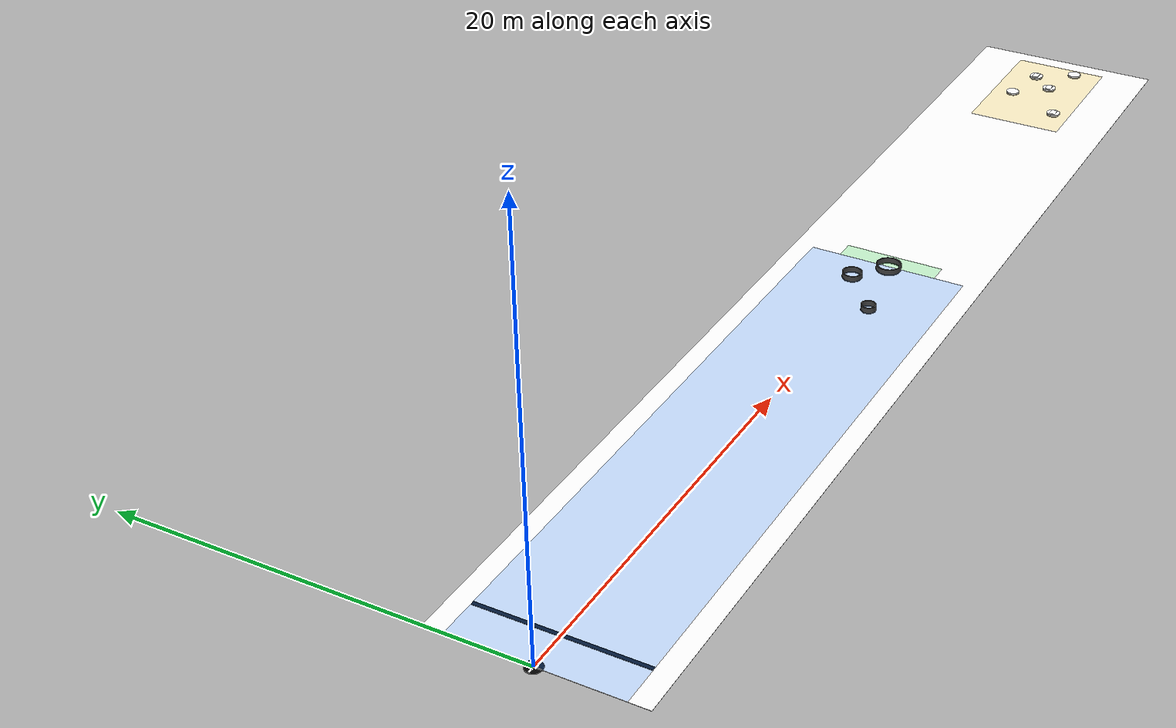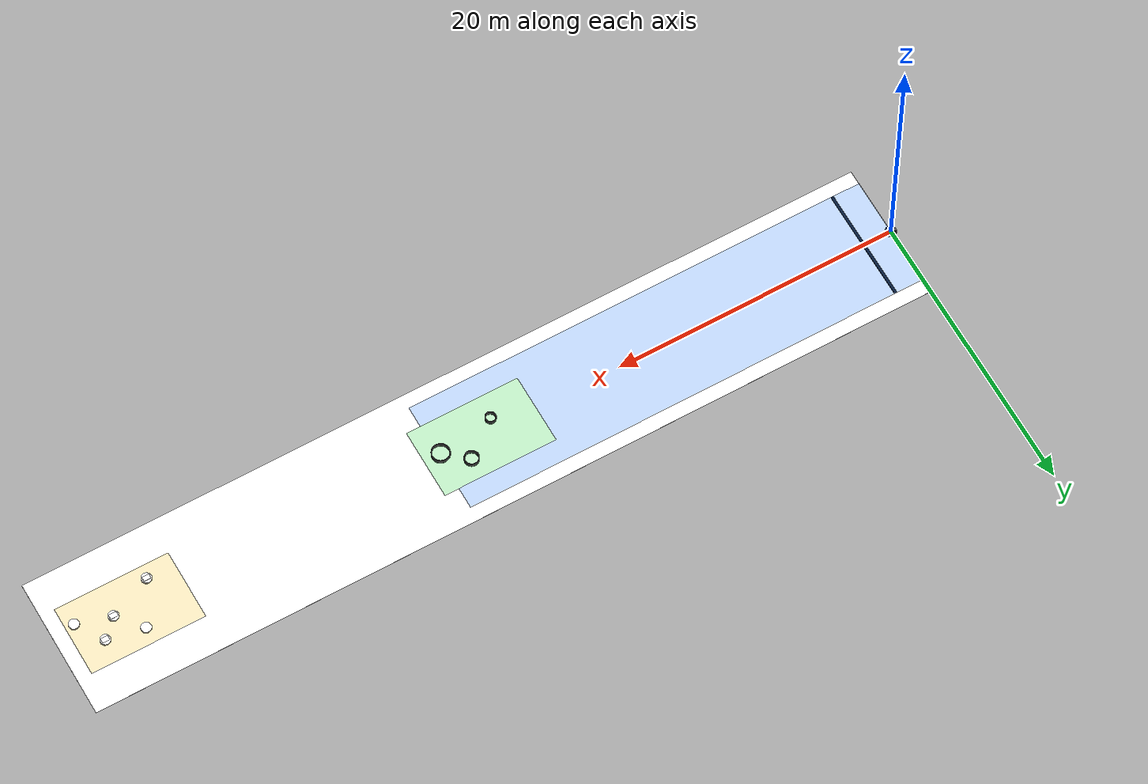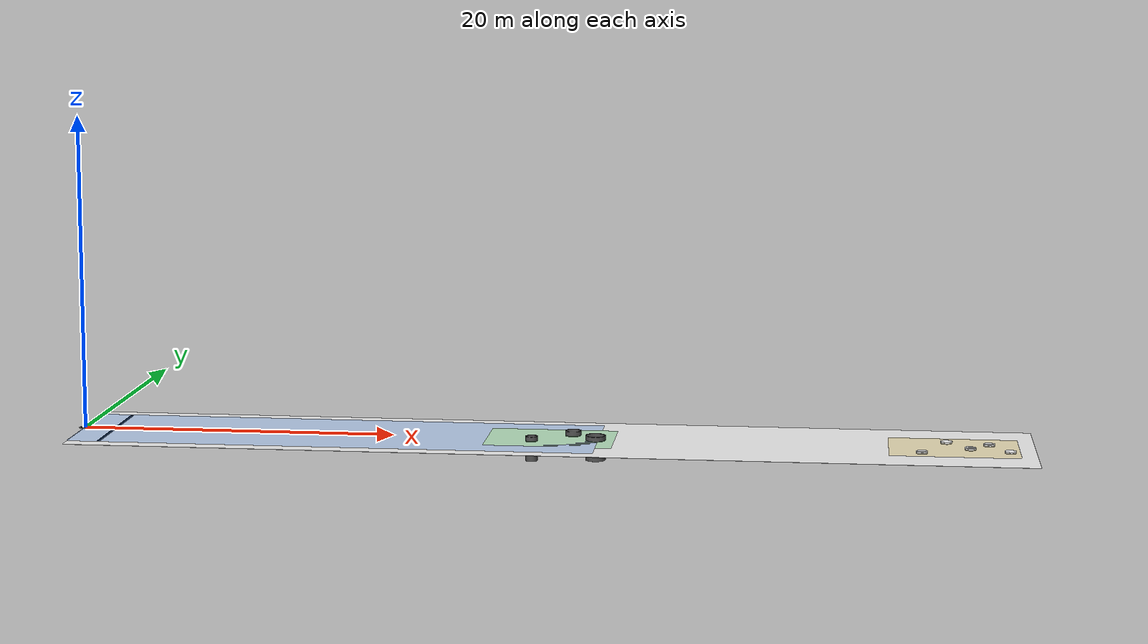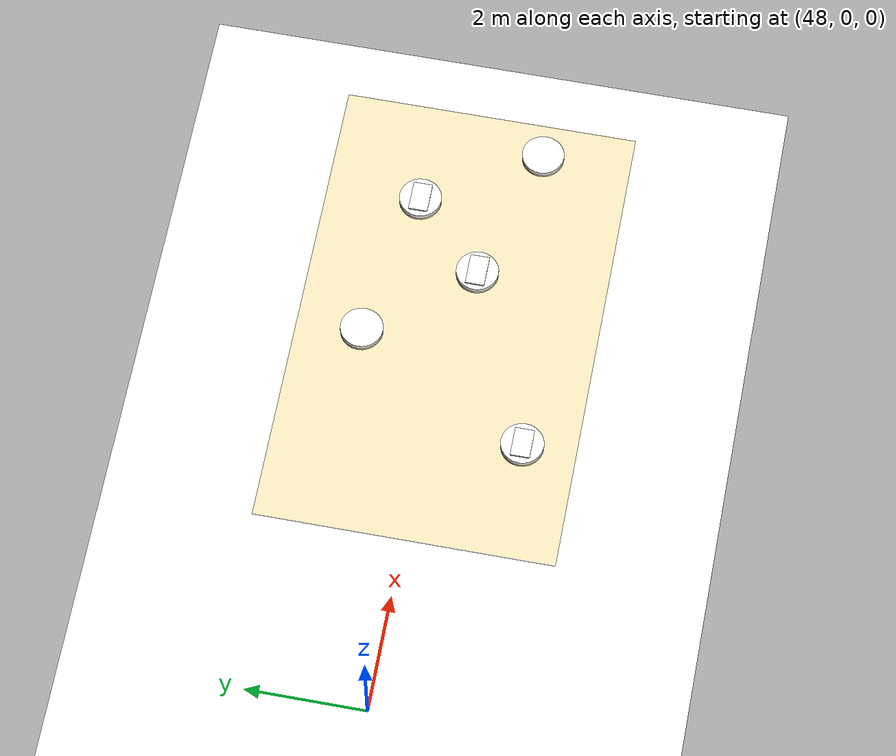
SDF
<?xml version="1.0" encoding="utf-8"?>
<sdf version="1.9">
  <model name="competition_map">
    <static>true</static>
    <model name="ground_plane">
      <static>true</static>
      <pose>0 0 0 0 0 0</pose>
      <link name="link">
        <!-- Collision: keep plane (fast and stable) -->
        <collision name="collision">
          <geometry>
            <plane>
              <normal>0 0 1</normal>
              <size>10 120</size>
            </plane>
          </geometry>
        </collision>
        <visual name="visual">
          <!-- Lift slightly to avoid z-fighting with the collision plane -->
          <pose>30 0 0.005 0 0 0</pose>
          <geometry>
            <box>
              <size>60 10 0.01</size>
            </box>
          </geometry>
          <material>
            <ambient>1 1 1 1</ambient>
            <diffuse>1 1 1 1</diffuse>
            <specular>0 0 0 1</specular>
            <pbr>
              <metal>
                <albedo_map>model://competition_map/textures/ground_concrete.png</albedo_map>
              </metal>
            </pbr>
          </material>
        </visual>
      </link>
    </model>
    <model name="zone_takeoff_landing">
      <static>true</static>
      <pose>16.5 0 0.025 0 0 0</pose>
      <link name="link">
        <visual name="visual">
          <geometry>
            <box>
              <size>33 8 0.05</size>
            </box>
          </geometry>
          <material>
            <ambient>0.10 0.45 0.95 0.25</ambient>
            <diffuse>0.10 0.45 0.95 0.25</diffuse>
          </material>
        </visual>
      </link>
    </model>
    <model name="takeoff_circle">
      <static>true</static>
      <pose>0 0 0.01 0 0 0</pose>
      <link name="link">
        <visual name="visual">
          <geometry>
            <cylinder>
              <radius>0.4</radius>
              <length>0.02</length>
            </cylinder>
          </geometry>
          <material>
            <ambient>0 0 0 1</ambient>
            <diffuse>0 0 0 1</diffuse>
          </material>
        </visual>
      </link>
    </model>
    <model name="takeoff_H_mark_x">
      <static>true</static>
      <pose>0 0 0.021 0 0 0</pose>
      <link name="link">
        <visual name="visual">
          <geometry>
            <box>
              <size>0.7 0.08 0.02</size>
            </box>
          </geometry>
          <material>
            <ambient>1 1 1 1</ambient>
            <diffuse>1 1 1 1</diffuse>
          </material>
        </visual>
      </link>
    </model>
    <model name="takeoff_H_mark_y">
      <static>true</static>
      <pose>0 0 0.021 0 0 0</pose>
      <link name="link">
        <visual name="visual">
          <geometry>
            <box>
              <size>0.08 0.7 0.02</size>
            </box>
          </geometry>
          <material>
            <ambient>1 1 1 1</ambient>
            <diffuse>1 1 1 1</diffuse>
          </material>
        </visual>
      </link>
    </model>
    <model name="takeoff_line">
      <static>true</static>
      <pose>2 0 0.012 0 0 0</pose>
      <link name="link">
        <visual name="visual">
          <geometry>
            <box>
              <size>0.20 8.0 0.02</size>
            </box>
          </geometry>
          <material>
            <ambient>0 0 0 1</ambient>
            <diffuse>0 0 0 1</diffuse>
          </material>
        </visual>
      </link>
    </model>
    <model name="zone_delivery">
      <static>true</static>
      <pose>30 0 0.025 0 0 0</pose>
      <link name="link">
        <visual name="visual">
          <geometry>
            <box>
              <size>8 5 0.05</size>
            </box>
          </geometry>
          <material>
            <ambient>0.10 0.80 0.20 0.25</ambient>
            <diffuse>0.10 0.80 0.20 0.25</diffuse>
          </material>
        </visual>
      </link>
    </model>
    <model name="zone_recon">
      <static>true</static>
      <pose>55 0 0.025 0 0 0</pose>
      <link name="link">
        <visual name="visual">
          <geometry>
            <box>
              <size>8 5 0.05</size>
            </box>
          </geometry>
          <material>
            <ambient>0.95 0.75 0.10 0.25</ambient>
            <diffuse>0.95 0.75 0.10 0.25</diffuse>
          </material>
        </visual>
      </link>
    </model>
    <model name="delivery_bucket_d15cm_h30cm">
      <static>true</static>
      <pose>28.5 -1.2 0.32 -1.5707963 0 0</pose>
      <link name="link">
        <collision name="collision">
          <geometry>
            <mesh>
              <uri>models://competition_map/meshes/delivery_bucket_d15cm_h30cm.STL</uri>
              <scale>0.005 0.005 0.005</scale>
            </mesh>
          </geometry>
          <surface>
            <friction>
              <ode>
                <mu>1.0</mu>
                <mu2>1.0</mu2>
              </ode>
            </friction>
            <bounce>
              <restitution_coefficient>0.05</restitution_coefficient>
            </bounce>
          </surface>
        </collision>
        <visual name="visual">
          <geometry>
            <mesh>
              <uri>models://competition_map/meshes/delivery_bucket_d15cm_h30cm.STL</uri>
              <scale>0.005 0.005 0.005</scale>
            </mesh>
          </geometry>
          <material>
            <ambient>0.30 0.30 0.30 1</ambient>
            <diffuse>0.30 0.30 0.30 1</diffuse>
          </material>
        </visual>
      </link>
    </model>
    <model name="delivery_bucket_d20cm_h30cm">
      <static>true</static>
      <pose>30.8 0.6 0.32 -1.5707963 0 0</pose>
      <link name="link">
        <collision name="collision">
          <geometry>
            <mesh>
              <uri>models://competition_map/meshes/delivery_bucket_d20cm_h30cm.STL</uri>
              <scale>0.005 0.005 0.005</scale>
            </mesh>
          </geometry>
          <surface>
            <friction>
              <ode>
                <mu>1.0</mu>
                <mu2>1.0</mu2>
              </ode>
            </friction>
            <bounce>
              <restitution_coefficient>0.05</restitution_coefficient>
            </bounce>
          </surface>
        </collision>
        <visual name="visual">
          <geometry>
            <mesh>
              <uri>models://competition_map/meshes/delivery_bucket_d20cm_h30cm.STL</uri>
              <scale>0.005 0.005 0.005</scale>
            </mesh>
          </geometry>
          <material>
            <ambient>0.30 0.30 0.30 1</ambient>
            <diffuse>0.30 0.30 0.30 1</diffuse>
          </material>
        </visual>
      </link>
    </model>
    <model name="delivery_bucket_d25cm_h30cm">
      <static>true</static>
      <pose>32.2 -0.8 0.32 -1.5707963 0 0</pose>
      <link name="link">
        <collision name="collision">
          <geometry>
            <mesh>
              <uri>models://competition_map/meshes/delivery_bucket_d25cm_h30cm.STL</uri>
              <scale>0.005 0.005 0.005</scale>
            </mesh>
          </geometry>
          <surface>
            <friction>
              <ode>
                <mu>1.0</mu>
                <mu2>1.0</mu2>
              </ode>
            </friction>
            <bounce>
              <restitution_coefficient>0.05</restitution_coefficient>
            </bounce>
          </surface>
        </collision>
        <visual name="visual">
          <geometry>
            <mesh>
              <uri>models://competition_map/meshes/delivery_bucket_d25cm_h30cm.STL</uri>
              <scale>0.005 0.005 0.005</scale>
            </mesh>
          </geometry>
          <material>
            <ambient>0.30 0.30 0.30 1</ambient>
            <diffuse>0.30 0.30 0.30 1</diffuse>
          </material>
        </visual>
      </link>
    </model>
    <model name="recon_cyl_1">
      <static>true</static>
      <pose>53.0 -1.6 0.0675 0 0 0</pose>
      <link name="link">
        <collision name="collision">
          <geometry>
            <cylinder>
              <radius>0.36</radius>
              <length>0.135</length>
            </cylinder>
          </geometry>
        </collision>
        <visual name="visual">
          <geometry>
            <cylinder>
              <radius>0.36</radius>
              <length>0.135</length>
            </cylinder>
          </geometry>
          <material>
            <ambient>1 1 1 1</ambient>
            <diffuse>1 1 1 1</diffuse>
          </material>
        </visual>
        <!-- Hazard label (7.2cm x 7.2cm) as a thin red plate -->
        <visual name="hazard_label">
          <!-- place on +Y side of cylinder -->
          <pose>0 0 0.072 1.5707963 0 0</pose>
          <geometry>
            <box>
              <size>0.501 0.054 0.324</size>
            </box>
          </geometry>
          <material>
            <!-- 不要染色 -->
            <ambient>1 1 1 1</ambient>
            <diffuse>1 1 1 1</diffuse>
            <specular>0 0 0 1</specular>
            <!-- PBR 贴图（Gazebo Harmonic 推荐） -->
            <pbr>
              <metal>
                <albedo_map>
                  models://competition_map/textures/hazard_1.png
                </albedo_map>
              </metal>
            </pbr>
          </material>
        </visual>
      </link>
    </model>
    <model name="recon_cyl_2">
      <static>true</static>
      <pose>54.6 1.4 0.0675 0 0 0</pose>
      <link name="link">
        <collision name="collision">
          <geometry>
            <cylinder>
              <radius>0.36</radius>
              <length>0.135</length>
            </cylinder>
          </geometry>
        </collision>
        <visual name="visual">
          <geometry>
            <cylinder>
              <radius>0.36</radius>
              <length>0.135</length>
            </cylinder>
          </geometry>
          <material>
            <ambient>1 1 1 1</ambient>
            <diffuse>1 1 1 1</diffuse>
          </material>
        </visual>
      </link>
    </model>
    <model name="recon_cyl_3">
      <static>true</static>
      <pose>56.0 -0.3 0.0675 0 0 0</pose>
      <link name="link">
        <collision name="collision">
          <geometry>
            <cylinder>
              <radius>0.36</radius>
              <length>0.135</length>
            </cylinder>
          </geometry>
        </collision>
        <visual name="visual">
          <geometry>
            <cylinder>
              <radius>0.36</radius>
              <length>0.135</length>
            </cylinder>
          </geometry>
          <material>
            <ambient>1 1 1 1</ambient>
            <diffuse>1 1 1 1</diffuse>
          </material>
        </visual>
        <visual name="hazard_label">
          <pose>0 0 0.072 1.5707963 0 0</pose>
          <geometry>
            <box>
              <size>0.535 0.054 0.324</size>
            </box>
          </geometry>
          <material>
            <!-- 不要染色 -->
            <ambient>1 1 1 1</ambient>
            <diffuse>1 1 1 1</diffuse>
            <specular>0 0 0 1</specular>
            <!-- PBR 贴图（Gazebo Harmonic 推荐） -->
            <pbr>
              <metal>
                <albedo_map>
                  models://competition_map/textures/hazard_2.png
                </albedo_map>
              </metal>
            </pbr>
          </material>
        </visual>
      </link>
    </model>
    <model name="recon_cyl_4">
      <static>true</static>
      <pose>57.2 0.9 0.0675 0 0 0</pose>
      <link name="link">
        <collision name="collision">
          <geometry>
            <cylinder>
              <radius>0.36</radius>
              <length>0.135</length>
            </cylinder>
          </geometry>
        </collision>
        <visual name="visual">
          <geometry>
            <cylinder>
              <radius>0.36</radius>
              <length>0.135</length>
            </cylinder>
          </geometry>
          <material>
            <ambient>1 1 1 1</ambient>
            <diffuse>1 1 1 1</diffuse>
          </material>
        </visual>
        <visual name="hazard_label">
          <pose>0 0 0.072 1.5707963 0 0</pose>
          <geometry>
            <box>
              <size>0.511 0.054 0.324</size>
            </box>
          </geometry>
          <material>
            <!-- 不要染色 -->
            <ambient>1 1 1 1</ambient>
            <diffuse>1 1 1 1</diffuse>
            <specular>0 0 0 1</specular>
            <!-- PBR 贴图（Gazebo Harmonic 推荐） -->
            <pbr>
              <metal>
                <albedo_map>
                  models://competition_map/textures/hazard_3.png
                </albedo_map>
              </metal>
            </pbr>
          </material>
        </visual>
      </link>
    </model>
    <model name="recon_cyl_5">
      <static>true</static>
      <pose>58.4 -1.0 0.0675 0 0 0</pose>
      <link name="link">
        <collision name="collision">
          <geometry>
            <cylinder>
              <radius>0.36</radius>
              <length>0.135</length>
            </cylinder>
          </geometry>
        </collision>
        <visual name="visual">
          <geometry>
            <cylinder>
              <radius>0.36</radius>
              <length>0.135</length>
            </cylinder>
          </geometry>
          <material>
            <ambient>1 1 1 1</ambient>
            <diffuse>1 1 1 1</diffuse>
          </material>
        </visual>
      </link>
    </model>
  </model>
</sdf>
